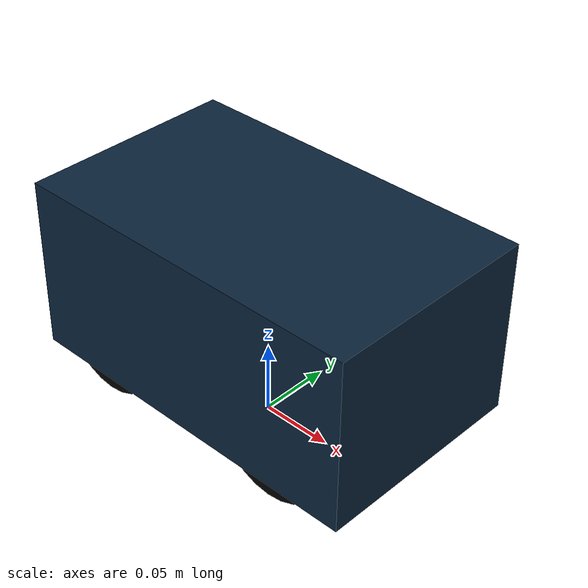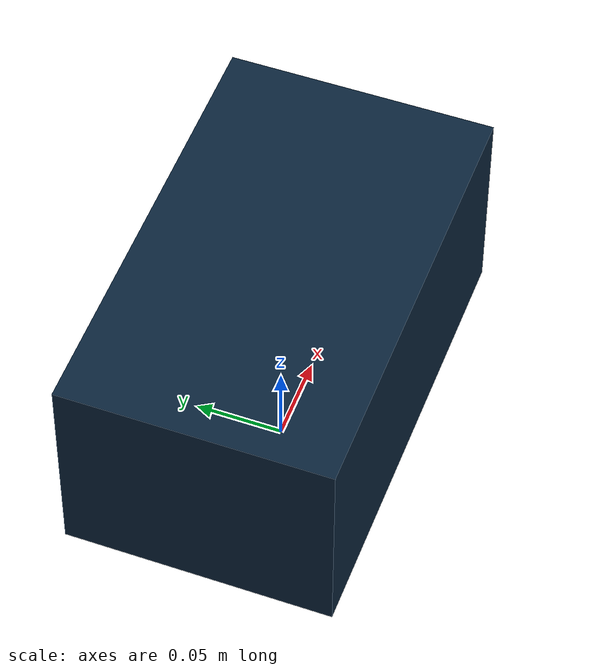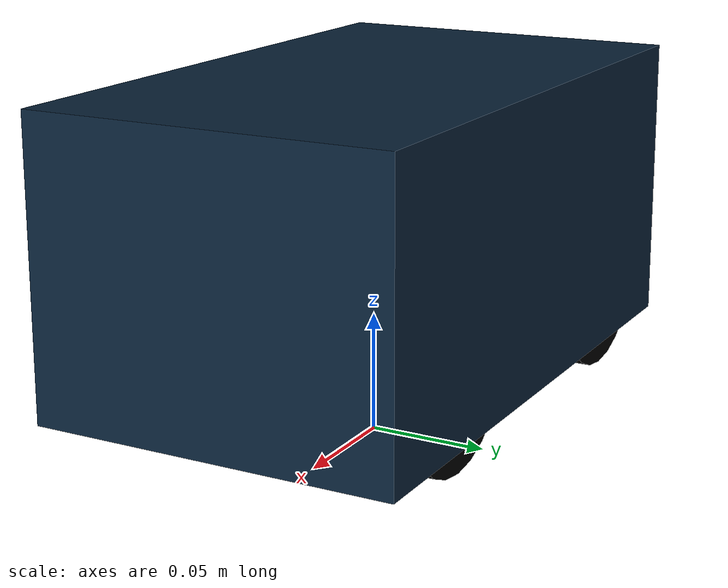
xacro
<robot name="elementbot_4w_diff" xmlns:xacro="http://www.ros.org/wiki/xacro">

  <!-- Define materials -->
  <material name="black">
    <color rgba="0.0 0.0 0.0 1.0"/>
  </material>

  <material name="blue">
    <color rgba="0.041 0.138 0.23 0.99"/>
  </material>

  <!-- Define parameters -->
  <xacro:property name="base_length" value="0.25"/>
  <xacro:property name="base_width" value="0.15"/>
  <xacro:property name="base_height" value="0.12"/>
  <xacro:property name="wheel_radius" value="0.04"/>
  <xacro:property name="wheel_length" value="0.025"/>
  <xacro:property name="wheel_separation_width" value="0.12"/>
  <xacro:property name="wheel_separation_length" value="0.14"/>
  <xacro:property name="wheel_offset" value="0.03"/>
  <xacro:property name="base_offset" value="0.07"/>
  <xacro:property name="PI" value="3.14159"/>

  <!-- Base footprint -->
  <link name="base_footprint">
    <visual>
      <geometry>
        <sphere radius="0.001"/>
      </geometry>
    </visual>
  </link>

  <!-- Base link -->
  <link name="base_link">
    <visual>
      <geometry>
        <box size="${base_length} ${base_width} ${base_height}"/>
      </geometry>
      <material name="blue"/>
    </visual>
  </link>

  <joint name="base_link2base_footprint" type="fixed">
    <parent link="base_footprint"/>
    <child link="base_link"/>
    <origin xyz="0 0 ${base_height / 2 + wheel_offset}"/>
  </joint>

  <!-- Wheel macro -->
  <xacro:macro name="wheel" params="name position_x position_y">
    <link name="${name}_link">
      <visual>
        <geometry>
          <cylinder length="${wheel_length}" radius="${wheel_radius}"/>
        </geometry>
        <origin rpy="${PI/2} 0 0"/>
        <material name="black"/>
      </visual>
    </link>

    <joint name="${name}_joint" type="continuous">
      <origin xyz="${position_x} ${position_y} -${wheel_offset}"/>
      <parent link="base_link"/>
      <child link="${name}_link"/>
      <axis xyz="0 1 0"/>
    </joint>
  </xacro:macro>

  <!-- Front left wheel -->
  <xacro:wheel name="left_front" position_x="${base_offset}" position_y="${wheel_separation_width / 2}"/>

  <!-- Front right wheel -->
  <xacro:wheel name="right_front" position_x="${base_offset}" position_y="-${wheel_separation_width / 2}"/>

  <!-- Back left wheel -->
  <xacro:wheel name="left_back" position_x="-${base_offset}" position_y="${wheel_separation_width / 2}"/>

  <!-- Back right wheel -->
  <xacro:wheel name="right_back" position_x="-${base_offset}" position_y="-${wheel_separation_width / 2}"/>

</robot>
